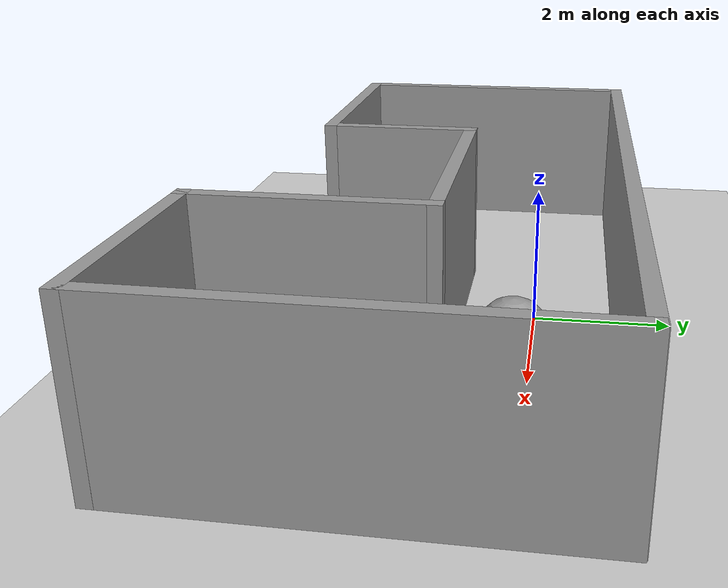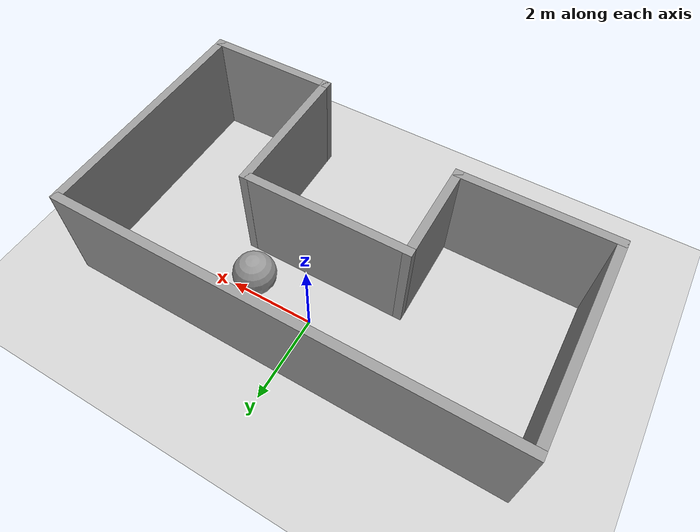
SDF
<sdf version="1.6">
 <world name="default">
  <light name="sun" type="directional">
   <pose>0 0 10 0 -0 0</pose>
   <diffuse>0.8 0.8 0.8 1</diffuse>
   <specular>0.2 0.2 0.2 1</specular>
   <attenuation>
    <range>1000</range>
    <constant>0.9</constant>
    <linear>0.01</linear>
    <quadratic>0.001</quadratic>
   </attenuation>
   <direction>-0.5 0.1 -0.9</direction>
  </light>
  <model name="ground_plane">
   <static>1</static>
   <link name="link">
    <collision name="collision">
     <geometry><plane><normal>0 0 1</normal><size>100 100</size></plane></geometry>
     <surface><friction><ode><mu>100</mu><mu2>50</mu2></ode></friction></surface>
    </collision>
    <visual name="visual">
     <cast_shadows>0</cast_shadows>
     <geometry><plane><normal>0 0 1</normal><size>100 100</size></plane></geometry>
     <material>
      <script><uri>file://media/materials/scripts/gazebo.material</uri><name>Gazebo/Grey</name></script>
     </material>
    </visual>
    <velocity_decay><linear>0</linear><angular>0</angular></velocity_decay>
   </link>
  </model>
  <physics name="default_physics" default="0" type="ode">
   <max_step_size>0.001</max_step_size>
   <real_time_factor>1</real_time_factor>
   <real_time_update_rate>1000</real_time_update_rate>
  </physics>
  <scene><ambient>0.4 0.4 0.4 1</ambient><background>0.7 0.7 0.7 1</background><shadows>1</shadows></scene>
  <spherical_coordinates>
   <surface_model>EARTH_WGS84</surface_model>
   <latitude_deg>0</latitude_deg>
   <longitude_deg>0</longitude_deg>
   <elevation>0</elevation>
   <heading_deg>0</heading_deg>
  </spherical_coordinates>
  <model name="room">
   <link name="Wall_10">
    <collision name="Wall_10_Collision">
     <geometry><box><size>3.99868 0.2 2.5</size></box></geometry>
     <pose>0 0 1.25 0 -0 0</pose>
    </collision>
    <visual name="Wall_10_Visual">
     <pose>0 0 1.25 0 -0 0</pose>
     <geometry><box><size>3.99868 0.2 2.5</size></box></geometry>
     <material>
      <script><uri>file://media/materials/scripts/gazebo.material</uri><name>Gazebo/Grey</name></script>
     </material>
    </visual>
    <velocity_decay><linear>0</linear><angular>0</angular></velocity_decay>
    <pose>-0.709137 -1.17267 0 0 -0 3.14159</pose>
   </link>
   <link name="Wall_11">
    <collision name="Wall_11_Collision">
     <geometry><box><size>2.47814 0.2 2.5</size></box></geometry>
     <pose>0 0 1.25 0 -0 0</pose>
    </collision>
    <visual name="Wall_11_Visual">
     <pose>0 0 1.25 0 -0 0</pose>
     <geometry><box><size>2.47814 0.2 2.5</size></box></geometry>
     <material>
      <script><uri>file://media/materials/scripts/gazebo.material</uri><name>Gazebo/Grey</name></script>
     </material>
    </visual>
    <velocity_decay><linear>0</linear><angular>0</angular></velocity_decay>
    <pose>-2.60848 -2.31164 0 0 0 -1.5708</pose>
   </link>
   <link name="Wall_12">
    <collision name="Wall_12_Collision">
     <geometry><box><size>3.67766 0.2 2.5</size></box></geometry>
     <pose>0 0 1.25 0 -0 0</pose>
    </collision>
    <visual name="Wall_12_Visual">
     <pose>0 0 1.25 0 -0 0</pose>
     <geometry><box><size>3.67766 0.2 2.5</size></box></geometry>
     <material>
      <script><uri>file://media/materials/scripts/gazebo.material</uri><name>Gazebo/Grey</name></script>
     </material>
    </visual>
    <velocity_decay><linear>0</linear><angular>0</angular></velocity_decay>
    <pose>-4.34731 -3.45061 0 0 -0 3.14159</pose>
   </link>
   <link name="Wall_13">
    <collision name="Wall_13_Collision">
     <geometry><box><size>4.82918 0.2 2.5</size></box></geometry>
     <pose>0 0 1.25 0 -0 0</pose>
    </collision>
    <visual name="Wall_13_Visual">
     <pose>0 0 1.25 0 -0 0</pose>
     <geometry><box><size>4.82918 0.2 2.5</size></box></geometry>
     <material>
      <script><uri>file://media/materials/scripts/gazebo.material</uri><name>Gazebo/Grey</name></script>
     </material>
    </visual>
    <velocity_decay><linear>0</linear><angular>0</angular></velocity_decay>
    <pose>-6.08614 -1.13602 0 0 -0 1.5708</pose>
   </link>
   <link name="Wall_5">
    <collision name="Wall_5_Collision">
     <geometry><box><size>10.4468 0.2 2.5</size></box></geometry>
     <pose>0 0 1.25 0 -0 0</pose>
    </collision>
    <visual name="Wall_5_Visual">
     <pose>0 0 1.25 0 -0 0</pose>
     <geometry><box><size>10.4468 0.2 2.5</size></box></geometry>
     <material>
      <script><uri>file://media/materials/scripts/gazebo.material</uri><name>Gazebo/Grey</name></script>
     </material>
    </visual>
    <velocity_decay><linear>0</linear><angular>0</angular></velocity_decay>
    <pose>-0.965378 1.23909 0 0 -0 0</pose>
   </link>
   <link name="Wall_7">
    <collision name="Wall_7_Collision">
     <geometry><box><size>5.84133 0.2 2.5</size></box></geometry>
     <pose>0 0 1.25 0 -0 0</pose>
    </collision>
    <visual name="Wall_7_Visual">
     <pose>0 0 1.25 0 -0 0</pose>
     <geometry><box><size>5.84133 0.2 2.5</size></box></geometry>
     <material>
      <script><uri>file://media/materials/scripts/gazebo.material</uri><name>Gazebo/Grey</name></script>
     </material>
    </visual>
    <velocity_decay><linear>0</linear><angular>0</angular></velocity_decay>
    <pose>4.18521 -1.59299 0 0 0 -1.5708</pose>
   </link>
   <link name="Wall_8">
    <collision name="Wall_8_Collision">
     <geometry><box><size>3.19501 0.2 2.5</size></box></geometry>
     <pose>0 0 1.25 0 -0 0</pose>
    </collision>
    <visual name="Wall_8_Visual">
     <pose>0 0 1.25 0 -0 0</pose>
     <geometry><box><size>3.19501 0.2 2.5</size></box></geometry>
     <material>
      <script><uri>file://media/materials/scripts/gazebo.material</uri><name>Gazebo/Grey</name></script>
     </material>
    </visual>
    <velocity_decay><linear>0</linear><angular>0</angular></velocity_decay>
    <pose>2.68771 -4.41366 0 0 -0 3.14159</pose>
   </link>
   <link name="Wall_9">
    <collision name="Wall_9_Collision">
     <geometry><box><size>3.44113 0.2 2.5</size></box></geometry>
     <pose>0 0 1.25 0 -0 0</pose>
    </collision>
    <visual name="Wall_9_Visual">
     <pose>0 0 1.25 0 -0 0</pose>
     <geometry><box><size>3.44113 0.2 2.5</size></box></geometry>
     <material>
      <script><uri>file://media/materials/scripts/gazebo.material</uri><name>Gazebo/Grey</name></script>
     </material>
    </visual>
    <velocity_decay><linear>0</linear><angular>0</angular></velocity_decay>
    <pose>1.1902 -2.79317 0 0 -0 1.5708</pose>
   </link>
   <static>1</static>
   <pose>1 0 0 0 -0 0</pose>
  </model>
  <gravity>0 0 -9.8</gravity>
  <magnetic_field>6e-06 2.3e-05 -4.2e-05</magnetic_field>
  <atmosphere type="adiabatic"/>
  <audio><device>default</device></audio>
  <model name="unit_sphere">
   <pose>1.54531 -0.227456 0.5 0 -0 0</pose>
   <link name="link">
    <inertial>
     <mass>1</mass>
     <inertia><ixx>0.1</ixx><ixy>0</ixy><ixz>0</ixz><iyy>0.1</iyy><iyz>0</iyz><izz>0.1</izz></inertia>
    </inertial>
    <collision name="collision"><geometry><sphere><radius>0.5</radius></sphere></geometry></collision>
    <visual name="visual">
     <geometry><sphere><radius>0.5</radius></sphere></geometry>
     <material>
      <script><name>Gazebo/Grey</name><uri>file://media/materials/scripts/gazebo.material</uri></script>
     </material>
    </visual>
   </link>
  </model>
 </world>
</sdf>
